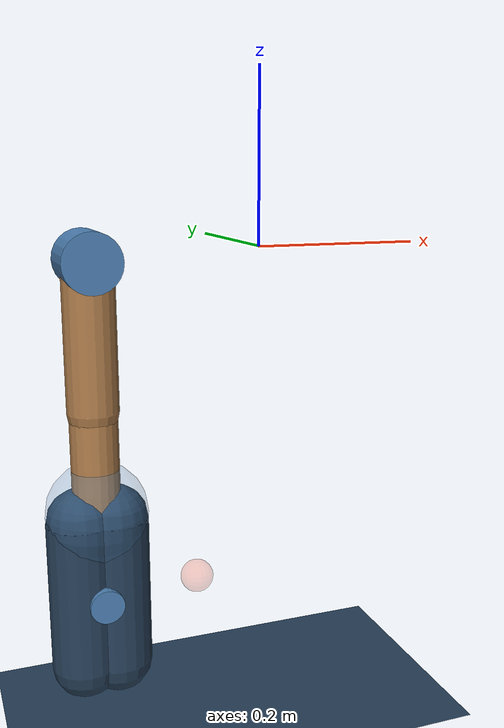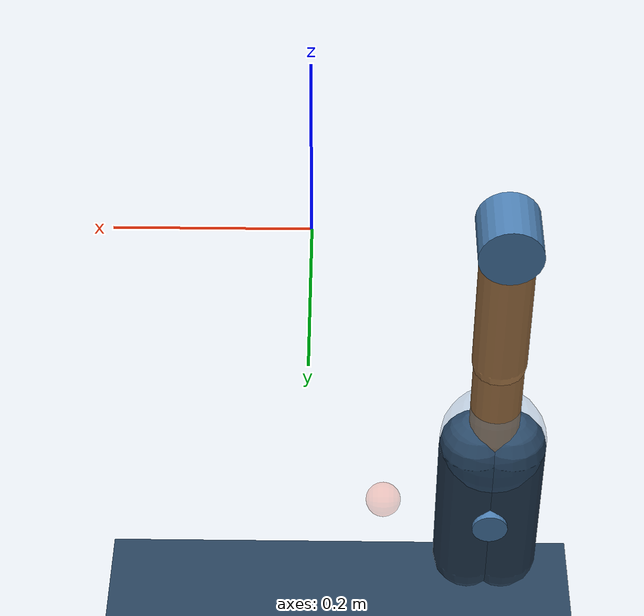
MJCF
<mujoco model="finger">

    <visual>
        <headlight ambient=".4 .4 .4" diffuse=".8 .8 .8" specular="0.1 0.1 0.1"/>
        <map znear=".01"/>
        <quality shadowsize="2048"/>
    </visual>

    <asset>
        <texture name="skybox" type="skybox" builtin="gradient" rgb1=".4 .6 .8" rgb2="0 0 0"
                 width="800" height="800" mark="random" markrgb="1 1 1"/>
    </asset>

    <asset>
        <texture name="grid" type="2d" builtin="checker" rgb1=".1 .2 .3" rgb2=".2 .3 .4" width="300" height="300" mark="edge" markrgb=".2 .3 .4"/>
        <material name="grid" texture="grid" texrepeat="1 1" texuniform="true" reflectance=".2"/>
        <material name="self" rgba=".7 .5 .3 1"/>
        <material name="self_default" rgba=".7 .5 .3 1"/>
        <material name="self_highlight" rgba="0 .5 .3 1"/>
        <material name="effector" rgba=".7 .4 .2 1"/>
        <material name="effector_default" rgba=".7 .4 .2 1"/>
        <material name="effector_highlight" rgba="0 .5 .3 1"/>
        <material name="decoration" rgba=".3 .5 .7 1"/>
        <material name="eye" rgba="0 .2 1 1"/>
        <material name="target" rgba=".6 .3 .3 1"/>
        <material name="target_default" rgba=".6 .3 .3 1"/>
        <material name="target_highlight" rgba=".6 .3 .3 .4"/>
    </asset>

<!--   important mjx options  -->
  <option timestep="0.01" impratio="10" iterations="1" ls_iterations="4">
    <flag eulerdamp="disable" gravity="disable"/>
  </option>

<!--  reduce contact computation for mjx -->
 <custom>
    <numeric data="15" name="max_contact_points"/>
    <numeric data="15" name="max_geom_pairs"/>
  </custom>

    <default>
        <geom solimp="0 0.99 0.1" solref="0.02 1"/>
        <joint type="hinge" axis="0 -1 0"/>
        <motor ctrllimited="true" ctrlrange="-1 1"/>
         <default class="finger">
            <site type="ellipsoid" size=".025 .03 .025" rgba=".5 .5 .5 .3" group="3"/>
        </default>
    </default>

    <worldbody>
        <light name="light" directional="true" diffuse=".6 .6 .6" pos="0 0 2" specular=".3 .3 .3"/>
        <geom name="ground" type="plane" pos="0 0 -0.6" size=".6 .2 10" material="grid"/>
        <camera name="cam0" pos="0 -1 .8" xyaxes="1 0 0 0 1 2"/>
        <camera name="cam1" pos="0 -1 .4" xyaxes="1 0 0 0 0 1" />

        <body name="proximal" pos="-.2 0 -0.01" childclass="finger">
            <geom name="proximal_decoration" type="cylinder" fromto="0 -.033 0 0 .033 0" size=".034" material="decoration" />
            <joint name="proximal" range="-150 -80" ref="-90" damping="0.05" limited="false" />
            <geom name="proximal" type="capsule" material="self" size=".03" fromto="0 0 0 0 0 -.17"/>
            <body name="distal" pos="0 0 -.18" childclass="finger">
                <joint name="distal" range="-50 50" damping="0.05" limited="false"/>
                <geom name="distal" type="capsule" size=".028" material="self" fromto="0 0 0 0 0 -.16"/>
                <geom name="fingertip" type="capsule" size=".03" material="effector" fromto="0 0 -.13 0 0 -.161"/>
                <site name="fingertip_site" type="sphere" pos="0 0 -0.161"  size="0.035" rgba="1. .97 0. 0.15"/>
            </body>
        </body>

        <body name="spinner" pos="-.2 0 -.4">
            <joint name="free_joint_body_1" type="ball" damping="0.0005" armature="0.0"/>
            <geom name="cap1" type="capsule" size=".04 0.09" material="grid" mass="0.005" condim="3" contype="7" group="2" solref="0.01 1.0" pos="0.02 0.0 0.0"/>
            <geom name="cap2" type="capsule" size=".04 0.09" material="grid" mass="0.005" condim="3" contype="7" group="2" solref="0.01 1.0" pos="-0.02 0.0 0.0"/>
            <site name="capsule_site" type="sphere" size="0.06" material="self" pos="0 0 0.1"  rgba=".3 .5 .7 0.25"/>
            <geom name="spinner_decoration" type="cylinder" fromto="0 -.045 0 0 .045 0" size=".02" material="decoration"/>
            <geom name="target" pos="0. 0. 0.12" type="sphere" size="0.02" rgba=".3 .5 .7 0.25" contype="0" conaffinity="0"/>
            <site name="target_site" type="sphere" pos="0 0 0.12"  size=".015" rgba="1. .97 0. 0.8"/>
        </body>

        <body mocap="true" name="target" pos="-.2 0 -.4" quat="0. 0.707107 0. 0.707107">
            <!-- A joint for tracking angular displacement -->
            <geom name="target_decoration" pos="0. 0. 0.12" type="sphere" size="0.02" rgba="0.961 0.294 0.145 0.25" contype="0" conaffinity="0"/>
        </body>

    </worldbody>

    <actuator>
        <motor name="proximal" joint="proximal" gear="1.5"/>
        <motor name="distal" joint="distal" gear="1.5"/>
    </actuator>
</mujoco>
